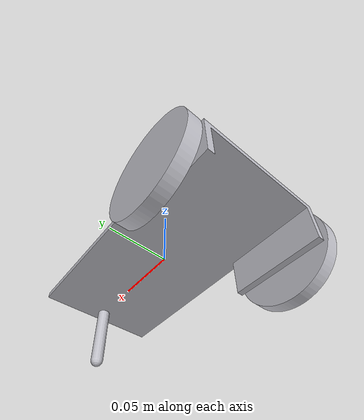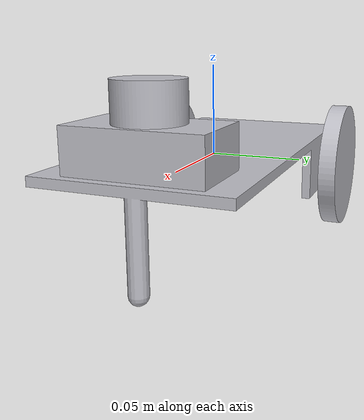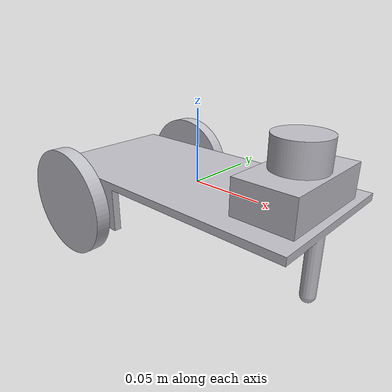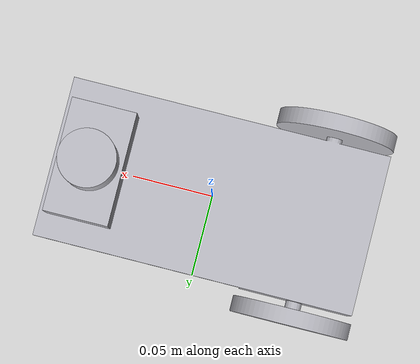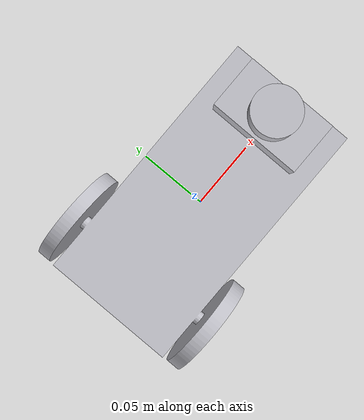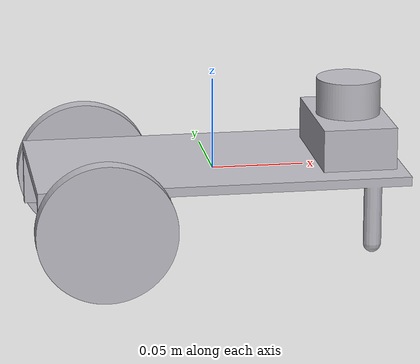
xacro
<?xml version="1.0" ?>
<robot name="line" xmlns:xacro="http://www.ros.org/wiki/xacro">

<xacro:include filename="$(find line_description)/urdf/materials.xacro" />
<xacro:include filename="$(find line_description)/urdf/line.trans" />
<xacro:include filename="$(find line_description)/urdf/line.gazebo" />
<link name="base_link">
  <inertial>
    <origin xyz="-0.008355506887426001 2.7103412180322045e-17 -0.0014409659866593677" rpy="0 0 0"/>
    <mass value="0.9878184379632768"/>
    <inertia ixx="0.001127" iyy="0.003679" izz="0.004639" ixy="-0.0" iyz="0.0" ixz="-8.1e-05"/>
  </inertial>
  <visual>
    <origin xyz="0 0 0" rpy="0 0 0"/>
    <geometry>
      <mesh filename="package://line_description/meshes/base_link.stl" scale="0.001 0.001 0.001"/>
    </geometry>
    <material name="silver"/>
  </visual>
  <collision>
    <origin xyz="0 0 0" rpy="0 0 0"/>
    <geometry>
      <mesh filename="package://line_description/meshes/base_link.stl" scale="0.001 0.001 0.001"/>
    </geometry>
  </collision>
</link>

<link name="wheel2_1">
  <inertial>
    <origin xyz="-9.685754837063243e-10 -0.005000000000000011 -2.2351741811588166e-10" rpy="0 0 0"/>
    <mass value="0.34680237652518564"/>
    <inertia ixx="0.000125" iyy="0.000244" izz="0.000125" ixy="0.0" iyz="0.0" ixz="-0.0"/>
  </inertial>
  <visual>
    <origin xyz="0.065 0.055 0.015" rpy="0 0 0"/>
    <geometry>
      <mesh filename="package://line_description/meshes/wheel2_1.stl" scale="0.001 0.001 0.001"/>
    </geometry>
    <material name="silver"/>
  </visual>
  <collision>
    <origin xyz="0.065 0.055 0.015" rpy="0 0 0"/>
    <geometry>
      <mesh filename="package://line_description/meshes/wheel2_1.stl" scale="0.001 0.001 0.001"/>
    </geometry>
  </collision>
</link>

<link name="wheel1_1">
  <inertial>
    <origin xyz="-9.685754837063243e-10 0.005000000000000011 -2.2351741811588166e-10" rpy="0 0 0"/>
    <mass value="0.34680237652518564"/>
    <inertia ixx="0.000125" iyy="0.000244" izz="0.000125" ixy="-0.0" iyz="-0.0" ixz="0.0"/>
  </inertial>
  <visual>
    <origin xyz="0.065 -0.055 0.015" rpy="0 0 0"/>
    <geometry>
      <mesh filename="package://line_description/meshes/wheel1_1.stl" scale="0.001 0.001 0.001"/>
    </geometry>
    <material name="silver"/>
  </visual>
  <collision>
    <origin xyz="0.065 -0.055 0.015" rpy="0 0 0"/>
    <geometry>
      <mesh filename="package://line_description/meshes/wheel1_1.stl" scale="0.001 0.001 0.001"/>
    </geometry>
  </collision>
</link>

<link name="baase2_1">
  <inertial>
    <origin xyz="-0.024999999999999967 0.0 0.0115" rpy="0 0 0"/>
    <mass value="0.50554"/>
    <inertia ixx="0.000229" iyy="9e-05" izz="0.000274" ixy="0.0" iyz="0.0" ixz="0.0"/>
  </inertial>
  <visual>
    <origin xyz="-0.1 -0.0 -0.005" rpy="0 0 0"/>
    <geometry>
      <mesh filename="package://line_description/meshes/baase2_1.stl" scale="0.001 0.001 0.001"/>
    </geometry>
    <material name="silver"/>
  </visual>
  <collision>
    <origin xyz="-0.1 -0.0 -0.005" rpy="0 0 0"/>
    <geometry>
      <mesh filename="package://line_description/meshes/baase2_1.stl" scale="0.001 0.001 0.001"/>
    </geometry>
  </collision>
</link>

<link name="lidar_1">
  <inertial>
    <origin xyz="6.938893903907228e-17 0.0 0.010000000000000012" rpy="0 0 0"/>
    <mass value="0.15105170177541452"/>
    <inertia ixx="1.7e-05" iyy="1.7e-05" izz="2.3e-05" ixy="0.0" iyz="0.0" ixz="0.0"/>
  </inertial>
  <visual>
    <origin xyz="-0.075 -0.0 -0.028" rpy="0 0 0"/>
    <geometry>
      <mesh filename="package://line_description/meshes/lidar_1.stl" scale="0.001 0.001 0.001"/>
    </geometry>
    <material name="silver"/>
  </visual>
  <collision>
    <origin xyz="-0.075 -0.0 -0.028" rpy="0 0 0"/>
    <geometry>
      <mesh filename="package://line_description/meshes/lidar_1.stl" scale="0.001 0.001 0.001"/>
    </geometry>
  </collision>
</link>

<joint name="Rev1" type="continuous">
  <origin xyz="-0.065 -0.055 -0.015" rpy="0 0 0"/>
  <parent link="base_link"/>
  <child link="wheel2_1"/>
  <axis xyz="0.0 1.0 0.0"/>
</joint>

<joint name="Rev2" type="continuous">
  <origin xyz="-0.065 0.055 -0.015" rpy="0 0 0"/>
  <parent link="base_link"/>
  <child link="wheel1_1"/>
  <axis xyz="0.0 1.0 0.0"/>
</joint>

<joint name="Rigid3" type="fixed">
  <origin xyz="0.1 0.0 0.005" rpy="0 0 0"/>
  <parent link="base_link"/>
  <child link="baase2_1"/>
</joint>

<joint name="Rev4" type="continuous">
  <origin xyz="-0.025 0.0 0.023" rpy="0 0 0"/>
  <parent link="baase2_1"/>
  <child link="lidar_1"/>
  <axis xyz="0.0 0.0 1.0"/>
</joint>

</robot>

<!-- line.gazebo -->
<robot name="line" xmlns:xacro="http://www.ros.org/wiki/xacro" >

<xacro:property name="body_color" value="Gazebo/Silver" />

<gazebo>
  <plugin name="control" filename="libgazebo_ros_control.so"/>
</gazebo>
<gazebo reference="base_link">
  <material>${body_color}</material>
  <mu1>0.2</mu1>
  <mu2>0.2</mu2>
  <selfCollide>true</selfCollide>
  <gravity>true</gravity>
</gazebo>

<gazebo reference="wheel2_1">
  <material>${body_color}</material>
  <mu1>0.2</mu1>
  <mu2>0.2</mu2>
  <selfCollide>true</selfCollide>
</gazebo>

<gazebo reference="wheel1_1">
  <material>${body_color}</material>
  <mu1>0.2</mu1>
  <mu2>0.2</mu2>
  <selfCollide>true</selfCollide>
</gazebo>

<gazebo reference="baase2_1">
  <material>${body_color}</material>
  <mu1>0.2</mu1>
  <mu2>0.2</mu2>
  <selfCollide>true</selfCollide>
</gazebo>

<gazebo reference="lidar_1">
  <material>${body_color}</material>
  <mu1>0.2</mu1>
  <mu2>0.2</mu2>
  <selfCollide>true</selfCollide>
</gazebo>
<gazebo>
  <plugin name="differential_drive_controller" filename="libgazebo_ros_diff_drive.so">

    <!-- Plugin update rate in Hz -->
    <updateRate>${1000}</updateRate>

    <!-- Name of left joint, defaults to `left_joint` -->
    <leftJoint>Rev2</leftJoint>

    <!-- Name of right joint, defaults to `right_joint` -->
    <rightJoint>Rev1</rightJoint>

    <!-- The distance from the center of one wheel to the other, in meters, defaults to 0.34 m -->
    <wheelSeparation>0.5380</wheelSeparation>

    <!-- Diameter of the wheels, in meters, defaults to 0.15 m -->
    <wheelDiameter>0.2410</wheelDiameter>

    <!-- Wheel acceleration, in rad/s^2, defaults to 0.0 rad/s^2 -->
    <wheelAcceleration>1.0</wheelAcceleration>

    <!-- Maximum torque which the wheels can produce, in Nm, defaults to 5 Nm -->
    <wheelTorque>20</wheelTorque>

    <!-- Topic to receive geometry_msgs/Twist message commands, defaults to `cmd_vel` -->
    <commandTopic>cmd_vel</commandTopic>

    <!-- Topic to publish nav_msgs/Odometry messages, defaults to `odom` -->
    <odometryTopic>odom</odometryTopic>

    <!-- Odometry frame, defaults to `odom` -->
    <odometryFrame>odom</odometryFrame>

    <!-- Robot frame to calculate odometry from, defaults to `base_footprint` -->
    <robotBaseFrame>base_link</robotBaseFrame>

    <!-- Odometry source, 0 for ENCODER, 1 for WORLD, defaults to WORLD -->
    <odometrySource>1</odometrySource>

    <!-- Set to true to publish transforms for the wheel links, defaults to false -->
    <publishWheelTF>true</publishWheelTF>

    <!-- Set to true to publish transforms for the odometry, defaults to true -->
    <publishOdom>true</publishOdom>

    <!-- Set to true to publish sensor_msgs/JointState on /joint_states for the wheel joints, defaults to false -->
    <publishWheelJointState>true</publishWheelJointState>

    <!-- Set to true to swap right and left wheels, defaults to true -->
    <legacyMode>false</legacyMode>
  </plugin>
</gazebo>
</robot>
